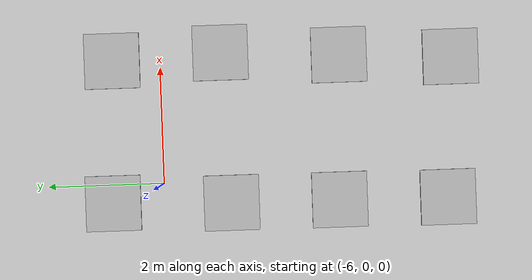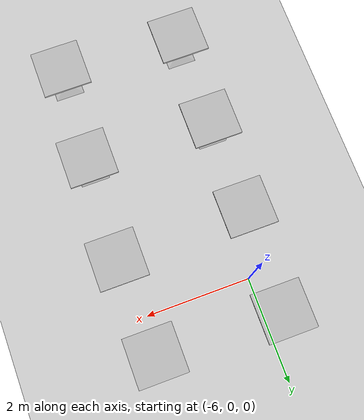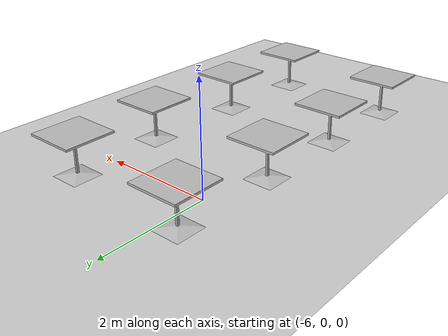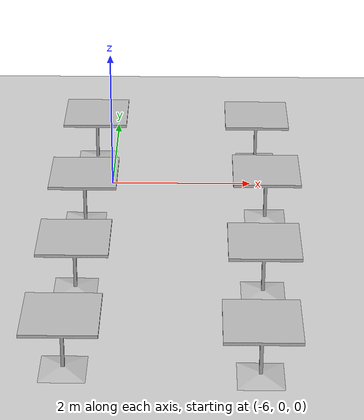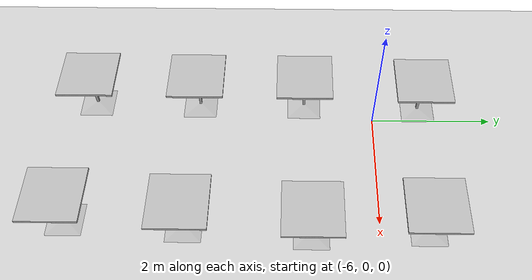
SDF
<sdf version="1.6">
 <world name="default">
  <light name="sun" type="directional">
   <pose>0 0 10 0 -0 0</pose>
   <diffuse>0.8 0.8 0.8 1</diffuse>
   <specular>0.1 0.1 0.1 1</specular>
   <attenuation>
    <range>1000</range>
    <constant>0.9</constant>
    <linear>0.01</linear>
    <quadratic>0.001</quadratic>
   </attenuation>
   <direction>-0.5 0.5 -1</direction>
  </light>
  <model name="ground_plane">
   <static>1</static>
   <link name="link">
    <collision name="collision">
     <geometry><plane><normal>0 0 1</normal><size>100 100</size></plane></geometry>
     <surface><friction><ode><mu>100</mu><mu2>50</mu2></ode></friction></surface>
    </collision>
    <visual name="visual">
     <cast_shadows>0</cast_shadows>
     <geometry><plane><normal>0 0 1</normal><size>100 100</size></plane></geometry>
     <material>
      <script><uri>file://media/materials/scripts/gazebo.material</uri><name>Gazebo/Grey</name></script>
     </material>
    </visual>
   </link>
  </model>
  <gravity>0 0 -9.8</gravity>
  <magnetic_field>6e-06 2.3e-05 -4.2e-05</magnetic_field>
  <atmosphere type="adiabatic"/>
  <physics name="default_physics" default="0" type="ode">
   <max_step_size>0.001</max_step_size>
   <real_time_factor>1</real_time_factor>
   <real_time_update_rate>1000</real_time_update_rate>
  </physics>
  <scene><ambient>0.4 0.4 0.4 1</ambient><background>0.7 0.7 0.7 1</background><shadows>1</shadows></scene>
  <spherical_coordinates>
   <surface_model>EARTH_WGS84</surface_model>
   <latitude_deg>0</latitude_deg>
   <longitude_deg>0</longitude_deg>
   <elevation>0</elevation>
   <heading_deg>0</heading_deg>
  </spherical_coordinates>
  <model name="cafe_table">
   <static>1</static>
   <link name="link">
    <collision name="surface">
     <pose>0 0 0.755 0 -0 0</pose>
     <geometry><box><size>0.913 0.913 0.04</size></box></geometry>
    </collision>
    <collision name="column">
     <pose>0 0 0.37 0 -0 0</pose>
     <geometry><box><size>0.042 0.042 0.74</size></box></geometry>
    </collision>
    <collision name="base">
     <pose>0 0 0.02 0 -0 0</pose>
     <geometry><box><size>0.56 0.56 0.04</size></box></geometry>
    </collision>
    <visual name="visual">
     <geometry><mesh><uri>model://cafe_table/meshes/cafe_table.dae</uri><scale>1 1 1</scale></mesh></geometry>
    </visual>
   </link>
   <pose>-6.32588 -2.96242 0 0 -0 0</pose>
  </model>
  <model name="cafe_table_0">
   <static>1</static>
   <link name="link">
    <collision name="surface">
     <pose>0 0 0.755 0 -0 0</pose>
     <geometry><box><size>0.913 0.913 0.04</size></box></geometry>
    </collision>
    <collision name="column">
     <pose>0 0 0.37 0 -0 0</pose>
     <geometry><box><size>0.042 0.042 0.74</size></box></geometry>
    </collision>
    <collision name="base">
     <pose>0 0 0.02 0 -0 0</pose>
     <geometry><box><size>0.56 0.56 0.04</size></box></geometry>
    </collision>
    <visual name="visual">
     <geometry><mesh><uri>model://cafe_table/meshes/cafe_table.dae</uri><scale>1 1 1</scale></mesh></geometry>
    </visual>
   </link>
   <pose>-6.31815 -1.17145 0 0 -0 0</pose>
  </model>
  <model name="cafe_table_1">
   <static>1</static>
   <link name="link">
    <collision name="surface">
     <pose>0 0 0.755 0 -0 0</pose>
     <geometry><box><size>0.913 0.913 0.04</size></box></geometry>
    </collision>
    <collision name="column">
     <pose>0 0 0.37 0 -0 0</pose>
     <geometry><box><size>0.042 0.042 0.74</size></box></geometry>
    </collision>
    <collision name="base">
     <pose>0 0 0.02 0 -0 0</pose>
     <geometry><box><size>0.56 0.56 0.04</size></box></geometry>
    </collision>
    <visual name="visual">
     <geometry><mesh><uri>model://cafe_table/meshes/cafe_table.dae</uri><scale>1 1 1</scale></mesh></geometry>
    </visual>
   </link>
   <pose>-6.26286 0.788563 0 0 -0 0</pose>
  </model>
  <model name="cafe_table_2">
   <static>1</static>
   <link name="link">
    <collision name="surface">
     <pose>0 0 0.755 0 -0 0</pose>
     <geometry><box><size>0.913 0.913 0.04</size></box></geometry>
    </collision>
    <collision name="column">
     <pose>0 0 0.37 0 -0 0</pose>
     <geometry><box><size>0.042 0.042 0.74</size></box></geometry>
    </collision>
    <collision name="base">
     <pose>0 0 0.02 0 -0 0</pose>
     <geometry><box><size>0.56 0.56 0.04</size></box></geometry>
    </collision>
    <visual name="visual">
     <geometry><mesh><uri>model://cafe_table/meshes/cafe_table.dae</uri><scale>1 1 1</scale></mesh></geometry>
    </visual>
   </link>
   <pose>-3.92789 -3.0254 0 0 -0 0</pose>
  </model>
  <model name="cafe_table_3">
   <static>1</static>
   <link name="link">
    <collision name="surface">
     <pose>0 0 0.755 0 -0 0</pose>
     <geometry><box><size>0.913 0.913 0.04</size></box></geometry>
    </collision>
    <collision name="column">
     <pose>0 0 0.37 0 -0 0</pose>
     <geometry><box><size>0.042 0.042 0.74</size></box></geometry>
    </collision>
    <collision name="base">
     <pose>0 0 0.02 0 -0 0</pose>
     <geometry><box><size>0.56 0.56 0.04</size></box></geometry>
    </collision>
    <visual name="visual">
     <geometry><mesh><uri>model://cafe_table/meshes/cafe_table.dae</uri><scale>1 1 1</scale></mesh></geometry>
    </visual>
   </link>
   <pose>-3.82738 -1.06423 0 0 -0 0</pose>
  </model>
  <model name="cafe_table_4">
   <static>1</static>
   <link name="link">
    <collision name="surface">
     <pose>0 0 0.755 0 -0 0</pose>
     <geometry><box><size>0.913 0.913 0.04</size></box></geometry>
    </collision>
    <collision name="column">
     <pose>0 0 0.37 0 -0 0</pose>
     <geometry><box><size>0.042 0.042 0.74</size></box></geometry>
    </collision>
    <collision name="base">
     <pose>0 0 0.02 0 -0 0</pose>
     <geometry><box><size>0.56 0.56 0.04</size></box></geometry>
    </collision>
    <visual name="visual">
     <geometry><mesh><uri>model://cafe_table/meshes/cafe_table.dae</uri><scale>1 1 1</scale></mesh></geometry>
    </visual>
   </link>
   <pose>-3.90519 0.734306 0 0 -0 0</pose>
  </model>
  <model name="cafe_table_5">
   <static>1</static>
   <link name="link">
    <collision name="surface">
     <pose>0 0 0.755 0 -0 0</pose>
     <geometry><box><size>0.913 0.913 0.04</size></box></geometry>
    </collision>
    <collision name="column">
     <pose>0 0 0.37 0 -0 0</pose>
     <geometry><box><size>0.042 0.042 0.74</size></box></geometry>
    </collision>
    <collision name="base">
     <pose>0 0 0.02 0 -0 0</pose>
     <geometry><box><size>0.56 0.56 0.04</size></box></geometry>
    </collision>
    <visual name="visual">
     <geometry><mesh><uri>model://cafe_table/meshes/cafe_table.dae</uri><scale>1 1 1</scale></mesh></geometry>
    </visual>
   </link>
   <pose>-6.34406 -4.75879 0 0 -0 0</pose>
  </model>
  <model name="cafe_table_6">
   <static>1</static>
   <link name="link">
    <collision name="surface">
     <pose>0 0 0.755 0 -0 0</pose>
     <geometry><box><size>0.913 0.913 0.04</size></box></geometry>
    </collision>
    <collision name="column">
     <pose>0 0 0.37 0 -0 0</pose>
     <geometry><box><size>0.042 0.042 0.74</size></box></geometry>
    </collision>
    <collision name="base">
     <pose>0 0 0.02 0 -0 0</pose>
     <geometry><box><size>0.56 0.56 0.04</size></box></geometry>
    </collision>
    <visual name="visual">
     <geometry><mesh><uri>model://cafe_table/meshes/cafe_table.dae</uri><scale>1 1 1</scale></mesh></geometry>
    </visual>
   </link>
   <pose>-4.02153 -4.87182 0 0 -0 0</pose>
  </model>
 </world>
</sdf>
